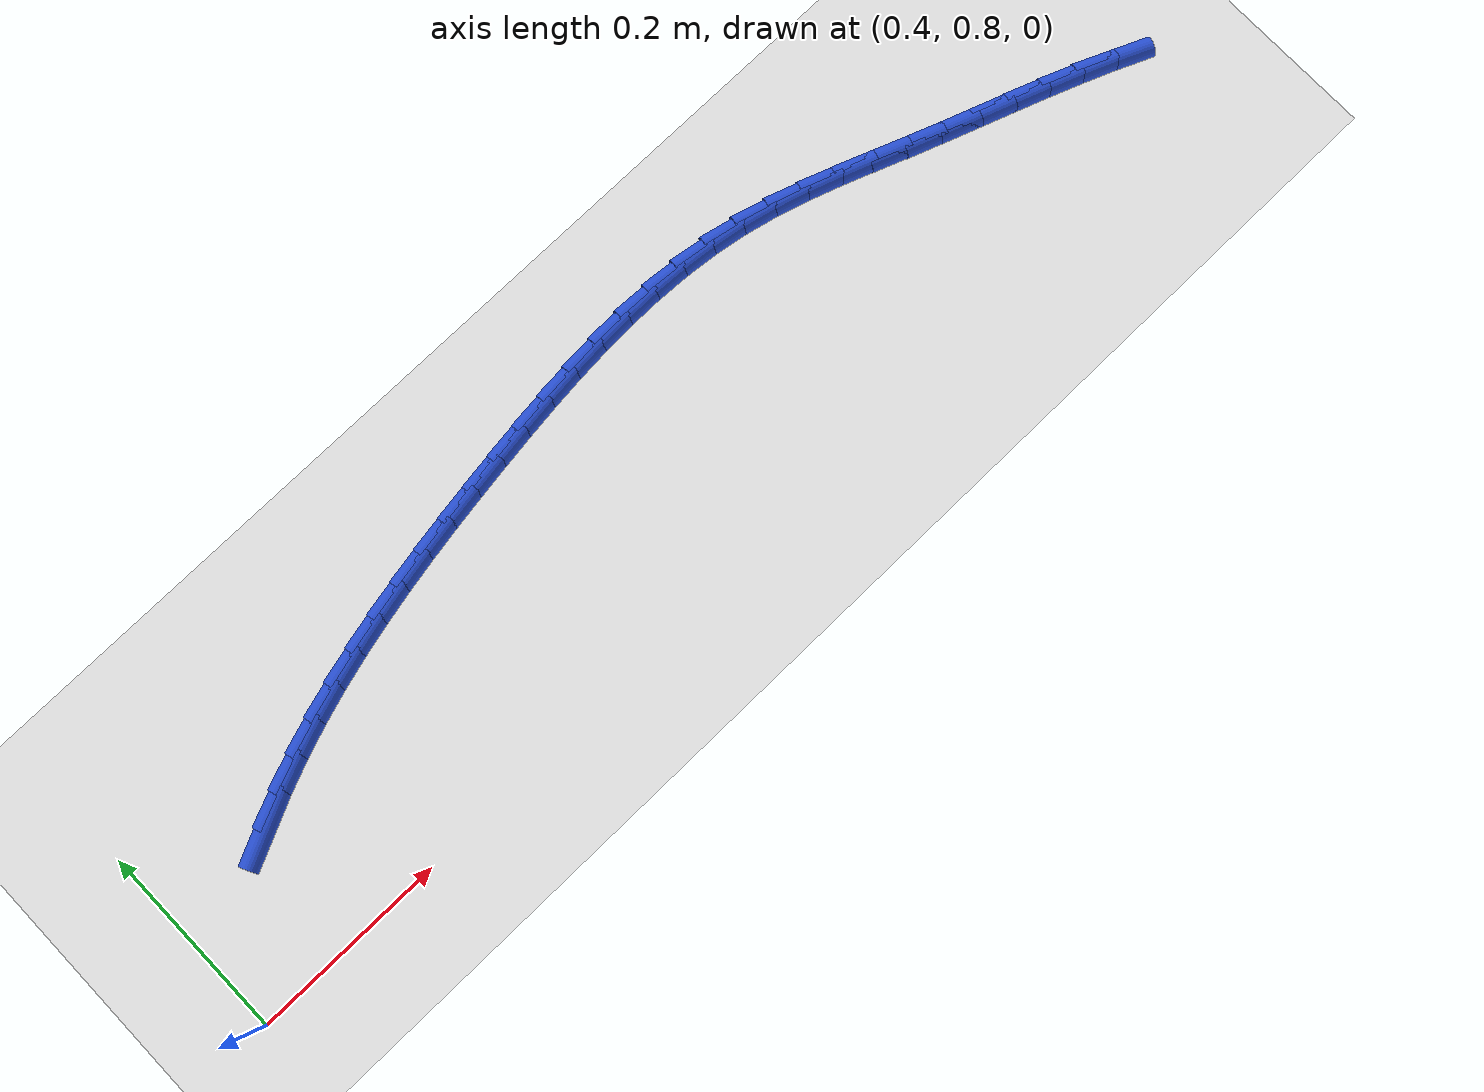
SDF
<sdf version="1.6">
 <world name="default">
  <model name="ground_plane">
   <static>1</static>
   <link name="link">
    <collision name="collision">
     <geometry><plane><normal>0 0 1</normal><size>100 100</size></plane></geometry>
     <surface><friction><ode><mu>100</mu><mu2>50</mu2></ode></friction></surface>
    </collision>
    <visual name="visual">
     <cast_shadows>0</cast_shadows>
     <geometry><plane><normal>0 0 1</normal><size>100 100</size></plane></geometry>
     <material>
      <script><uri>file://media/materials/scripts/gazebo.material</uri><name>Gazebo/WhiteGlow</name></script>
     </material>
    </visual>
   </link>
  </model>
  <model name="line">
   <link name="link_31">
    <pose>0.5168261524215624 0.928510122227202 0.01 0 1.57 0.4411245502686114</pose>
    <collision name="collision">
     <geometry><cylinder><radius>0.01</radius><length>0.08</length></cylinder></geometry>
    </collision>
    <visual name="visual">
     <material>
      <script><name>Gazebo/Blue</name><uri>file://media/materials/scripts/gazebo.material</uri></script>
     </material>
     <geometry><cylinder><radius>0.01</radius><length>0.08</length></cylinder></geometry>
    </visual>
   </link>
   <link name="link_32">
    <pose>0.5487789323213479 0.9435967884501849 0.01 0 1.57 0.39393522412077314</pose>
    <collision name="collision">
     <geometry><cylinder><radius>0.01</radius><length>0.08</length></cylinder></geometry>
    </collision>
    <visual name="visual">
     <material>
      <script><name>Gazebo/Blue</name><uri>file://media/materials/scripts/gazebo.material</uri></script>
     </material>
     <geometry><cylinder><radius>0.01</radius><length>0.08</length></cylinder></geometry>
    </visual>
   </link>
   <link name="link_33">
    <pose>0.5814178529054369 0.9571635649510432 0.01 0 1.57 0.35067977942888773</pose>
    <collision name="collision">
     <geometry><cylinder><radius>0.01</radius><length>0.08</length></cylinder></geometry>
    </collision>
    <visual name="visual">
     <material>
      <script><name>Gazebo/Blue</name><uri>file://media/materials/scripts/gazebo.material</uri></script>
     </material>
     <geometry><cylinder><radius>0.01</radius><length>0.08</length></cylinder></geometry>
    </visual>
   </link>
   <link name="link_34">
    <pose>0.6146824039420071 0.9693317058972302 0.01 0 1.57 0.3114519781689955</pose>
    <collision name="collision">
     <geometry><cylinder><radius>0.01</radius><length>0.08</length></cylinder></geometry>
    </collision>
    <visual name="visual">
     <material>
      <script><name>Gazebo/Blue</name><uri>file://media/materials/scripts/gazebo.material</uri></script>
     </material>
     <geometry><cylinder><radius>0.01</radius><length>0.08</length></cylinder></geometry>
    </visual>
   </link>
   <link name="link_35">
    <pose>0.6485120751992353 0.9802224654561976 0.01 0 1.57 0.2762745754789621</pose>
    <collision name="collision">
     <geometry><cylinder><radius>0.01</radius><length>0.08</length></cylinder></geometry>
    </collision>
    <visual name="visual">
     <material>
      <script><name>Gazebo/Blue</name><uri>file://media/materials/scripts/gazebo.material</uri></script>
     </material>
     <geometry><cylinder><radius>0.01</radius><length>0.08</length></cylinder></geometry>
    </visual>
   </link>
   <link name="link_36">
    <pose>0.6828463564452986 0.9899570977953981 0.01 0 1.57 0.24511840797166237</pose>
    <collision name="collision">
     <geometry><cylinder><radius>0.01</radius><length>0.08</length></cylinder></geometry>
    </collision>
    <visual name="visual">
     <material>
      <script><name>Gazebo/Blue</name><uri>file://media/materials/scripts/gazebo.material</uri></script>
     </material>
     <geometry><cylinder><radius>0.01</radius><length>0.08</length></cylinder></geometry>
    </visual>
   </link>
   <link name="link_37">
    <pose>0.7176247374483741 0.998656857082284 0.01 0 1.57 0.21791998529759293</pose>
    <collision name="collision">
     <geometry><cylinder><radius>0.01</radius><length>0.08</length></cylinder></geometry>
    </collision>
    <visual name="visual">
     <material>
      <script><name>Gazebo/Blue</name><uri>file://media/materials/scripts/gazebo.material</uri></script>
     </material>
     <geometry><cylinder><radius>0.01</radius><length>0.08</length></cylinder></geometry>
    </visual>
   </link>
   <link name="link_38">
    <pose>0.7527867079766393 1.0064429974843079 0.01 0 1.57 0.1945966617900141</pose>
    <collision name="collision">
     <geometry><cylinder><radius>0.01</radius><length>0.08</length></cylinder></geometry>
    </collision>
    <visual name="visual">
     <material>
      <script><name>Gazebo/Blue</name><uri>file://media/materials/scripts/gazebo.material</uri></script>
     </material>
     <geometry><cylinder><radius>0.01</radius><length>0.08</length></cylinder></geometry>
    </visual>
   </link>
   <link name="link_39">
    <pose>0.7882717577982709 1.0134367731689218 0.01 0 1.57 0.17505908160923872</pose>
    <collision name="collision">
     <geometry><cylinder><radius>0.01</radius><length>0.08</length></cylinder></geometry>
    </collision>
    <visual name="visual">
     <material>
      <script><name>Gazebo/Blue</name><uri>file://media/materials/scripts/gazebo.material</uri></script>
     </material>
     <geometry><cylinder><radius>0.01</radius><length>0.08</length></cylinder></geometry>
    </visual>
   </link>
   <link name="link_40">
    <pose>0.8240193766814464 1.0197594383035784 0.01 0 1.57 0.15922099133254172</pose>
    <collision name="collision">
     <geometry><cylinder><radius>0.01</radius><length>0.08</length></cylinder></geometry>
    </collision>
    <visual name="visual">
     <material>
      <script><name>Gazebo/Blue</name><uri>file://media/materials/scripts/gazebo.material</uri></script>
     </material>
     <geometry><cylinder><radius>0.01</radius><length>0.08</length></cylinder></geometry>
    </visual>
   </link>
   <link name="link_41">
    <pose>0.859969054394343 1.0255322470557304 0.01 0 1.57 0.14700672867535905</pose>
    <collision name="collision">
     <geometry><cylinder><radius>0.01</radius><length>0.08</length></cylinder></geometry>
    </collision>
    <visual name="visual">
     <material>
      <script><name>Gazebo/Blue</name><uri>file://media/materials/scripts/gazebo.material</uri></script>
     </material>
     <geometry><cylinder><radius>0.01</radius><length>0.08</length></cylinder></geometry>
    </visual>
   </link>
   <link name="link_42">
    <pose>0.8960602807051377 1.0308764535928299 0.01 0 1.57 0.1368987091131055</pose>
    <collision name="collision">
     <geometry><cylinder><radius>0.01</radius><length>0.08</length></cylinder></geometry>
    </collision>
    <visual name="visual">
     <material>
      <script><name>Gazebo/Blue</name><uri>file://media/materials/scripts/gazebo.material</uri></script>
     </material>
     <geometry><cylinder><radius>0.01</radius><length>0.08</length></cylinder></geometry>
    </visual>
   </link>
   <link name="link_43">
    <pose>0.9322327910663226 1.0358595926263783 0.01 0 1.57 0.12258911371297612</pose>
    <collision name="collision">
     <geometry><cylinder><radius>0.01</radius><length>0.08</length></cylinder></geometry>
    </collision>
    <visual name="visual">
     <material>
      <script><name>Gazebo/Blue</name><uri>file://media/materials/scripts/gazebo.material</uri></script>
     </material>
     <geometry><cylinder><radius>0.01</radius><length>0.08</length></cylinder></geometry>
    </visual>
   </link>
   <link name="link_44">
    <pose>0.9684273736661217 1.0403190157129738 0.01 0 1.57 0.10228699814109113</pose>
    <collision name="collision">
     <geometry><cylinder><radius>0.01</radius><length>0.08</length></cylinder></geometry>
    </collision>
    <visual name="visual">
     <material>
      <script><name>Gazebo/Blue</name><uri>file://media/materials/scripts/gazebo.material</uri></script>
     </material>
     <geometry><cylinder><radius>0.01</radius><length>0.08</length></cylinder></geometry>
    </visual>
   </link>
   <link name="link_45">
    <pose>1.00458509860503 1.0440304336247375 0.01 0 1.57 0.07581049561710813</pose>
    <collision name="collision">
     <geometry><cylinder><radius>0.01</radius><length>0.08</length></cylinder></geometry>
    </collision>
    <visual name="visual">
     <material>
      <script><name>Gazebo/Blue</name><uri>file://media/materials/scripts/gazebo.material</uri></script>
     </material>
     <geometry><cylinder><radius>0.01</radius><length>0.08</length></cylinder></geometry>
    </visual>
   </link>
   <link name="link_46">
    <pose>1.04064703598672 1.0467695564396235 0.01 0 1.57 0.04293258970237798</pose>
    <collision name="collision">
     <geometry><cylinder><radius>0.01</radius><length>0.08</length></cylinder></geometry>
    </collision>
    <visual name="visual">
     <material>
      <script><name>Gazebo/Blue</name><uri>file://media/materials/scripts/gazebo.material</uri></script>
     </material>
     <geometry><cylinder><radius>0.01</radius><length>0.08</length></cylinder></geometry>
    </visual>
   </link>
   <link name="link_47">
    <pose>1.0765542559148609 1.0483120942355846 0.01 0 1.57 0.0034085235811668804</pose>
    <collision name="collision">
     <geometry><cylinder><radius>0.01</radius><length>0.08</length></cylinder></geometry>
    </collision>
    <visual name="visual">
     <material>
      <script><name>Gazebo/Blue</name><uri>file://media/materials/scripts/gazebo.material</uri></script>
     </material>
     <geometry><cylinder><radius>0.01</radius><length>0.08</length></cylinder></geometry>
    </visual>
   </link>
   <link name="link_48">
    <pose>1.1122478284931245 1.048433757090575 0.01 0 1.57 -0.04298477662256288</pose>
    <collision name="collision">
     <geometry><cylinder><radius>0.01</radius><length>0.08</length></cylinder></geometry>
    </collision>
    <visual name="visual">
     <material>
      <script><name>Gazebo/Blue</name><uri>file://media/materials/scripts/gazebo.material</uri></script>
     </material>
     <geometry><cylinder><radius>0.01</radius><length>0.08</length></cylinder></geometry>
    </visual>
   </link>
   <link name="link_49">
    <pose>1.147668823825181 1.0469102550825486 0.01 0 1.57 -0.09639471534827782</pose>
    <collision name="collision">
     <geometry><cylinder><radius>0.01</radius><length>0.08</length></cylinder></geometry>
    </collision>
    <visual name="visual">
     <material>
      <script><name>Gazebo/Blue</name><uri>file://media/materials/scripts/gazebo.material</uri></script>
     </material>
     <geometry><cylinder><radius>0.01</radius><length>0.08</length></cylinder></geometry>
    </visual>
   </link>
   <link name="link_50">
    <pose>1.1827583120147025 1.0435172982894587 0.01 0 1.57 -0.1568241142151317</pose>
    <collision name="collision">
     <geometry><cylinder><radius>0.01</radius><length>0.08</length></cylinder></geometry>
    </collision>
    <visual name="visual">
     <material>
      <script><name>Gazebo/Blue</name><uri>file://media/materials/scripts/gazebo.material</uri></script>
     </material>
     <geometry><cylinder><radius>0.01</radius><length>0.08</length></cylinder></geometry>
    </visual>
   </link>
   <link name="link_51">
    <pose>1.2174573631653587 1.0380305967892591 0.01 0 1.57 -0.22300901044112229</pose>
    <collision name="collision">
     <geometry><cylinder><radius>0.01</radius><length>0.08</length></cylinder></geometry>
    </collision>
    <visual name="visual">
     <material>
      <script><name>Gazebo/Blue</name><uri>file://media/materials/scripts/gazebo.material</uri></script>
     </material>
     <geometry><cylinder><radius>0.01</radius><length>0.08</length></cylinder></geometry>
    </visual>
   </link>
   <link name="link_52">
    <pose>1.2517173360250047 1.0302610846378832 0.01 0 1.57 -0.2815972012523768</pose>
    <collision name="collision">
     <geometry><cylinder><radius>0.01</radius><length>0.08</length></cylinder></geometry>
    </collision>
    <visual name="visual">
     <material>
      <script><name>Gazebo/Blue</name><uri>file://media/materials/scripts/gazebo.material</uri></script>
     </material>
     <geometry><cylinder><radius>0.01</radius><length>0.08</length></cylinder></geometry>
    </visual>
   </link>
   <link name="link_53">
    <pose>1.2856166080447815 1.0204545543553882 0.01 0 1.57 -0.3236313328263289</pose>
    <collision name="collision">
     <geometry><cylinder><radius>0.01</radius><length>0.08</length></cylinder></geometry>
    </collision>
    <visual name="visual">
     <material>
      <script><name>Gazebo/Blue</name><uri>file://media/materials/scripts/gazebo.material</uri></script>
     </material>
     <geometry><cylinder><radius>0.01</radius><length>0.08</length></cylinder></geometry>
    </visual>
   </link>
   <link name="link_54">
    <pose>1.319319167430689 1.009149893576221 0.01 0 1.57 -0.349145117064477</pose>
    <collision name="collision">
     <geometry><cylinder><radius>0.01</radius><length>0.08</length></cylinder></geometry>
    </collision>
    <visual name="visual">
     <material>
      <script><name>Gazebo/Blue</name><uri>file://media/materials/scripts/gazebo.material</uri></script>
     </material>
     <geometry><cylinder><radius>0.01</radius><length>0.08</length></cylinder></geometry>
    </visual>
   </link>
   <link name="link_55">
    <pose>1.3529906032230097 0.9968914705161926 0.01 0 1.57 -0.35852697906041325</pose>
    <collision name="collision">
     <geometry><cylinder><radius>0.01</radius><length>0.08</length></cylinder></geometry>
    </collision>
    <visual name="visual">
     <material>
      <script><name>Gazebo/Blue</name><uri>file://media/materials/scripts/gazebo.material</uri></script>
     </material>
     <geometry><cylinder><radius>0.01</radius><length>0.08</length></cylinder></geometry>
    </visual>
   </link>
   <link name="link_56">
    <pose>1.3867965044620254 0.9842236533911132 0.01 0 1.57 -0.35238301375654507</pose>
    <collision name="collision">
     <geometry><cylinder><radius>0.01</radius><length>0.08</length></cylinder></geometry>
    </collision>
    <visual name="visual">
     <material>
      <script><name>Gazebo/Blue</name><uri>file://media/materials/scripts/gazebo.material</uri></script>
     </material>
     <geometry><cylinder><radius>0.01</radius><length>0.08</length></cylinder></geometry>
    </visual>
   </link>
   <link name="link_57">
    <pose>1.4208988359415666 0.9716831555846003 0.01 0 1.57 -0.3407236540394247</pose>
    <collision name="collision">
     <geometry><cylinder><radius>0.01</radius><length>0.08</length></cylinder></geometry>
    </collision>
    <visual name="visual">
     <material>
      <script><name>Gazebo/Blue</name><uri>file://media/materials/scripts/gazebo.material</uri></script>
     </material>
     <geometry><cylinder><radius>0.01</radius><length>0.08</length></cylinder></geometry>
    </visual>
   </link>
   <link name="link_58">
    <pose>1.4553066902074827 0.9594838064214619 0.01 0 1.57 -0.3366292014043472</pose>
    <collision name="collision">
     <geometry><cylinder><radius>0.01</radius><length>0.08</length></cylinder></geometry>
    </collision>
    <visual name="visual">
     <material>
      <script><name>Gazebo/Blue</name><uri>file://media/materials/scripts/gazebo.material</uri></script>
     </material>
     <geometry><cylinder><radius>0.01</radius><length>0.08</length></cylinder></geometry>
    </visual>
   </link>
   <link name="link_59">
    <pose>1.4898233508427476 0.9474047426374187 0.01 0 1.57 -0.3409473030265532</pose>
    <collision name="collision">
     <geometry><cylinder><radius>0.01</radius><length>0.08</length></cylinder></geometry>
    </collision>
    <visual name="visual">
     <material>
      <script><name>Gazebo/Blue</name><uri>file://media/materials/scripts/gazebo.material</uri></script>
     </material>
     <geometry><cylinder><radius>0.01</radius><length>0.08</length></cylinder></geometry>
    </visual>
   </link>
   <link name="link_60">
    <pose>1.52423759553224 0.9351944628156442 0.01 0 1.57 -0.3537548652159454</pose>
    <collision name="collision">
     <geometry><cylinder><radius>0.01</radius><length>0.08</length></cylinder></geometry>
    </collision>
    <visual name="visual">
     <material>
      <script><name>Gazebo/Blue</name><uri>file://media/materials/scripts/gazebo.material</uri></script>
     </material>
     <geometry><cylinder><radius>0.01</radius><length>0.08</length></cylinder></geometry>
    </visual>
   </link>
   <link name="link_61">
    <pose>1.5583382019608372 0.9226014655393117 0.01 0 1.57 -0.37528132073103376</pose>
    <collision name="collision">
     <geometry><cylinder><radius>0.01</radius><length>0.08</length></cylinder></geometry>
    </collision>
    <visual name="visual">
     <material>
      <script><name>Gazebo/Blue</name><uri>file://media/materials/scripts/gazebo.material</uri></script>
     </material>
     <geometry><cylinder><radius>0.01</radius><length>0.08</length></cylinder></geometry>
    </visual>
   </link>
   <link name="link_62">
    <pose>1.591913947813417 0.9093742493915942 0.01 0 1.57 -0.405889397109304</pose>
    <collision name="collision">
     <geometry><cylinder><radius>0.01</radius><length>0.08</length></cylinder></geometry>
    </collision>
    <visual name="visual">
     <material>
      <script><name>Gazebo/Blue</name><uri>file://media/materials/scripts/gazebo.material</uri></script>
     </material>
     <geometry><cylinder><radius>0.01</radius><length>0.08</length></cylinder></geometry>
    </visual>
   </link>
  </model>
 </world>
</sdf>
